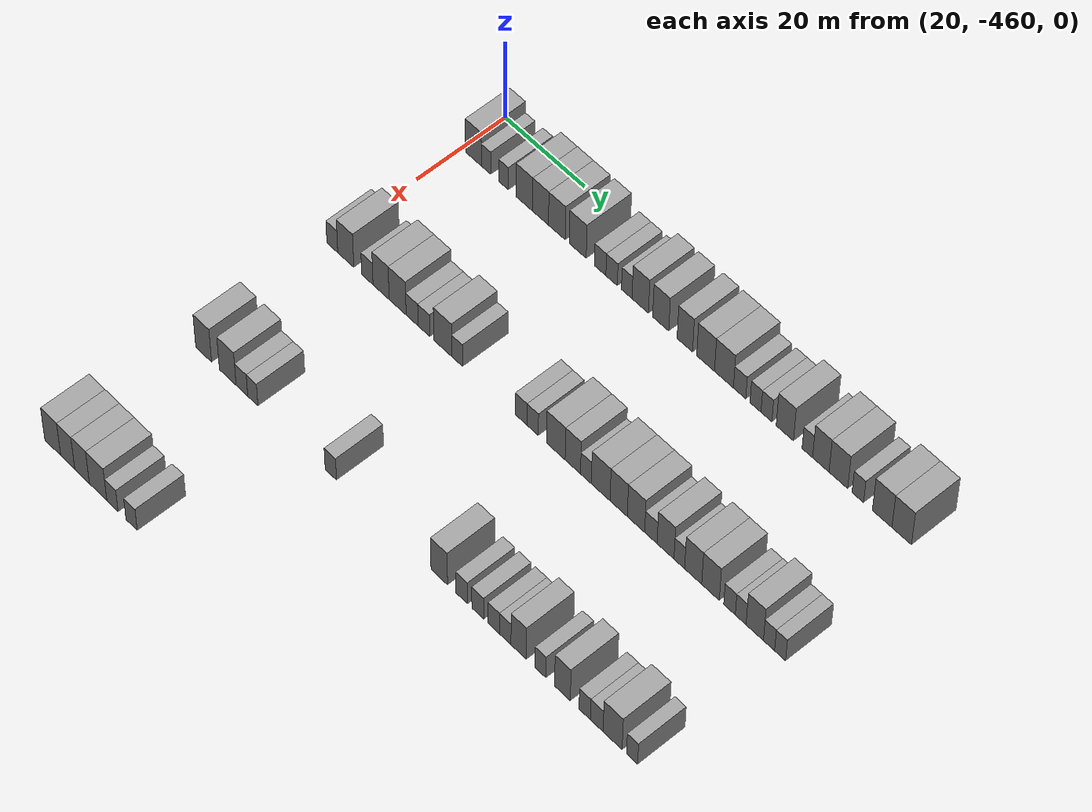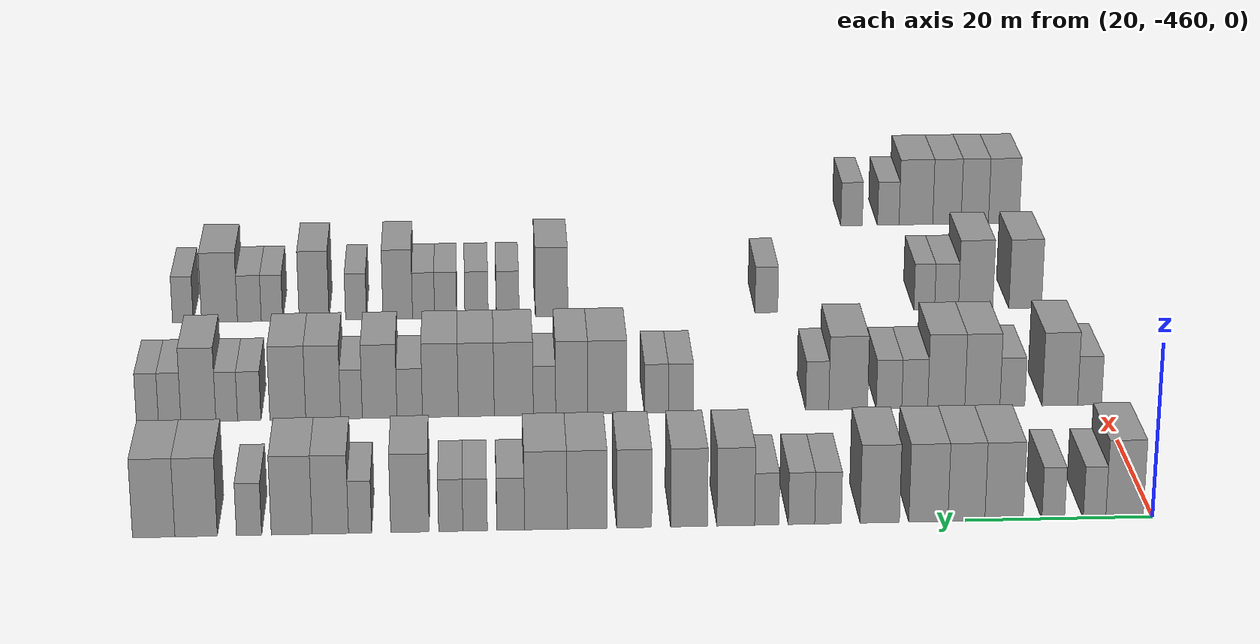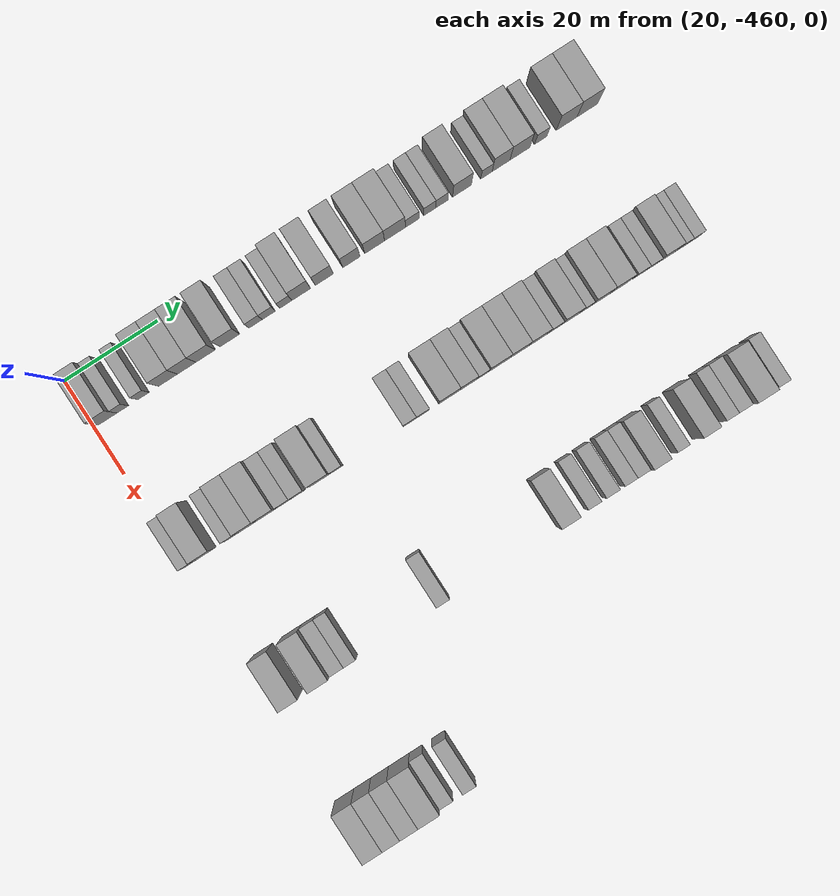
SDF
<sdf version="1.6">
 <world name="default">
  <model name="building_1">
   <static>1</static>
   <pose>25.0000 -456.9990 0 0.000000 0.000000 0.000000</pose>
   <link name="link">
    <pose>0 0 4.50 0 0 0</pose>
    <collision name="collision"><geometry><box><size>10.0000 4.0019 9.0000</size></box></geometry></collision>
    <visual name="visual">
     <cast_shadows>0</cast_shadows>
     <geometry><box><size>10.0000 4.0019 9.0000</size></box></geometry>
     <material>
      <script>
       <uri>model://grey_wall/materials/scripts</uri>
       <uri>model://grey_wall/materials/textures</uri>
       <name>vrc/grey_wall</name>
      </script>
     </material>
    </visual>
   </link>
  </model>
  <model name="building_2">
   <static>1</static>
   <pose>25.0000 -453.7954 0 0.000000 0.000000 0.000000</pose>
   <link name="link">
    <pose>0 0 3.00 0 0 0</pose>
    <collision name="collision"><geometry><box><size>10.0000 2.4054 6.0000</size></box></geometry></collision>
    <visual name="visual">
     <cast_shadows>0</cast_shadows>
     <geometry><box><size>10.0000 2.4054 6.0000</size></box></geometry>
     <material>
      <script>
       <uri>model://grey_wall/materials/scripts</uri>
       <uri>model://grey_wall/materials/textures</uri>
       <name>vrc/grey_wall</name>
      </script>
     </material>
    </visual>
   </link>
  </model>
  <model name="building_3">
   <static>1</static>
   <pose>25.0000 -449.3826 0 0.000000 0.000000 0.000000</pose>
   <link name="link">
    <pose>0 0 3.00 0 0 0</pose>
    <collision name="collision"><geometry><box><size>10.0000 2.4202 6.0000</size></box></geometry></collision>
    <visual name="visual">
     <cast_shadows>0</cast_shadows>
     <geometry><box><size>10.0000 2.4202 6.0000</size></box></geometry>
     <material>
      <script>
       <uri>model://grey_wall/materials/scripts</uri>
       <uri>model://grey_wall/materials/textures</uri>
       <name>vrc/grey_wall</name>
      </script>
     </material>
    </visual>
   </link>
  </model>
  <model name="building_4">
   <static>1</static>
   <pose>25.0000 -444.1288 0 0.000000 0.000000 0.000000</pose>
   <link name="link">
    <pose>0 0 4.50 0 0 0</pose>
    <collision name="collision"><geometry><box><size>10.0000 4.0873 9.0000</size></box></geometry></collision>
    <visual name="visual">
     <cast_shadows>0</cast_shadows>
     <geometry><box><size>10.0000 4.0873 9.0000</size></box></geometry>
     <material>
      <script>
       <uri>model://grey_wall/materials/scripts</uri>
       <uri>model://grey_wall/materials/textures</uri>
       <name>vrc/grey_wall</name>
      </script>
     </material>
    </visual>
   </link>
  </model>
  <model name="building_5">
   <static>1</static>
   <pose>25.0000 -440.1148 0 0.000000 0.000000 0.000000</pose>
   <link name="link">
    <pose>0 0 4.50 0 0 0</pose>
    <collision name="collision"><geometry><box><size>10.0000 3.9407 9.0000</size></box></geometry></collision>
    <visual name="visual">
     <cast_shadows>0</cast_shadows>
     <geometry><box><size>10.0000 3.9407 9.0000</size></box></geometry>
     <material>
      <script>
       <uri>model://grey_wall/materials/scripts</uri>
       <uri>model://grey_wall/materials/textures</uri>
       <name>vrc/grey_wall</name>
      </script>
     </material>
    </visual>
   </link>
  </model>
  <model name="building_6">
   <static>1</static>
   <pose>25.0000 -436.0656 0 0.000000 0.000000 0.000000</pose>
   <link name="link">
    <pose>0 0 4.50 0 0 0</pose>
    <collision name="collision"><geometry><box><size>10.0000 4.1576 9.0000</size></box></geometry></collision>
    <visual name="visual">
     <cast_shadows>0</cast_shadows>
     <geometry><box><size>10.0000 4.1576 9.0000</size></box></geometry>
     <material>
      <script>
       <uri>model://grey_wall/materials/scripts</uri>
       <uri>model://grey_wall/materials/textures</uri>
       <name>vrc/grey_wall</name>
      </script>
     </material>
    </visual>
   </link>
  </model>
  <model name="building_7">
   <static>1</static>
   <pose>25.0000 -430.8940 0 0.000000 0.000000 0.000000</pose>
   <link name="link">
    <pose>0 0 4.50 0 0 0</pose>
    <collision name="collision"><geometry><box><size>10.0000 4.1856 9.0000</size></box></geometry></collision>
    <visual name="visual">
     <cast_shadows>0</cast_shadows>
     <geometry><box><size>10.0000 4.1856 9.0000</size></box></geometry>
     <material>
      <script>
       <uri>model://grey_wall/materials/scripts</uri>
       <uri>model://grey_wall/materials/textures</uri>
       <name>vrc/grey_wall</name>
      </script>
     </material>
    </visual>
   </link>
  </model>
  <model name="building_8">
   <static>1</static>
   <pose>25.0000 -425.3885 0 0.000000 0.000000 0.000000</pose>
   <link name="link">
    <pose>0 0 3.00 0 0 0</pose>
    <collision name="collision"><geometry><box><size>10.0000 2.8254 6.0000</size></box></geometry></collision>
    <visual name="visual">
     <cast_shadows>0</cast_shadows>
     <geometry><box><size>10.0000 2.8254 6.0000</size></box></geometry>
     <material>
      <script>
       <uri>model://grey_wall/materials/scripts</uri>
       <uri>model://grey_wall/materials/textures</uri>
       <name>vrc/grey_wall</name>
      </script>
     </material>
    </visual>
   </link>
  </model>
  <model name="building_9">
   <static>1</static>
   <pose>25.0000 -422.5784 0 0.000000 0.000000 0.000000</pose>
   <link name="link">
    <pose>0 0 3.00 0 0 0</pose>
    <collision name="collision"><geometry><box><size>10.0000 2.7948 6.0000</size></box></geometry></collision>
    <visual name="visual">
     <cast_shadows>0</cast_shadows>
     <geometry><box><size>10.0000 2.7948 6.0000</size></box></geometry>
     <material>
      <script>
       <uri>model://grey_wall/materials/scripts</uri>
       <uri>model://grey_wall/materials/textures</uri>
       <name>vrc/grey_wall</name>
      </script>
     </material>
    </visual>
   </link>
  </model>
  <model name="building_10">
   <static>1</static>
   <pose>25.0000 -418.8921 0 0.000000 0.000000 0.000000</pose>
   <link name="link">
    <pose>0 0 3.00 0 0 0</pose>
    <collision name="collision"><geometry><box><size>10.0000 2.5778 6.0000</size></box></geometry></collision>
    <visual name="visual">
     <cast_shadows>0</cast_shadows>
     <geometry><box><size>10.0000 2.5778 6.0000</size></box></geometry>
     <material>
      <script>
       <uri>model://grey_wall/materials/scripts</uri>
       <uri>model://grey_wall/materials/textures</uri>
       <name>vrc/grey_wall</name>
      </script>
     </material>
    </visual>
   </link>
  </model>
  <model name="building_11">
   <static>1</static>
   <pose>25.0000 -415.6056 0 0.000000 0.000000 0.000000</pose>
   <link name="link">
    <pose>0 0 4.50 0 0 0</pose>
    <collision name="collision"><geometry><box><size>10.0000 3.9953 9.0000</size></box></geometry></collision>
    <visual name="visual">
     <cast_shadows>0</cast_shadows>
     <geometry><box><size>10.0000 3.9953 9.0000</size></box></geometry>
     <material>
      <script>
       <uri>model://grey_wall/materials/scripts</uri>
       <uri>model://grey_wall/materials/textures</uri>
       <name>vrc/grey_wall</name>
      </script>
     </material>
    </visual>
   </link>
  </model>
  <model name="building_12">
   <static>1</static>
   <pose>25.0000 -410.6604 0 0.000000 0.000000 0.000000</pose>
   <link name="link">
    <pose>0 0 4.50 0 0 0</pose>
    <collision name="collision"><geometry><box><size>10.0000 3.8949 9.0000</size></box></geometry></collision>
    <visual name="visual">
     <cast_shadows>0</cast_shadows>
     <geometry><box><size>10.0000 3.8949 9.0000</size></box></geometry>
     <material>
      <script>
       <uri>model://grey_wall/materials/scripts</uri>
       <uri>model://grey_wall/materials/textures</uri>
       <name>vrc/grey_wall</name>
      </script>
     </material>
    </visual>
   </link>
  </model>
  <model name="building_13">
   <static>1</static>
   <pose>25.0000 -404.8639 0 0.000000 0.000000 0.000000</pose>
   <link name="link">
    <pose>0 0 4.50 0 0 0</pose>
    <collision name="collision"><geometry><box><size>10.0000 3.6982 9.0000</size></box></geometry></collision>
    <visual name="visual">
     <cast_shadows>0</cast_shadows>
     <geometry><box><size>10.0000 3.6982 9.0000</size></box></geometry>
     <material>
      <script>
       <uri>model://grey_wall/materials/scripts</uri>
       <uri>model://grey_wall/materials/textures</uri>
       <name>vrc/grey_wall</name>
      </script>
     </material>
    </visual>
   </link>
  </model>
  <model name="building_14">
   <static>1</static>
   <pose>25.0000 -399.9000 0 0.000000 0.000000 0.000000</pose>
   <link name="link">
    <pose>0 0 4.50 0 0 0</pose>
    <collision name="collision"><geometry><box><size>10.0000 4.2295 9.0000</size></box></geometry></collision>
    <visual name="visual">
     <cast_shadows>0</cast_shadows>
     <geometry><box><size>10.0000 4.2295 9.0000</size></box></geometry>
     <material>
      <script>
       <uri>model://grey_wall/materials/scripts</uri>
       <uri>model://grey_wall/materials/textures</uri>
       <name>vrc/grey_wall</name>
      </script>
     </material>
    </visual>
   </link>
  </model>
  <model name="building_15">
   <static>1</static>
   <pose>25.0000 -395.5426 0 0.000000 0.000000 0.000000</pose>
   <link name="link">
    <pose>0 0 4.50 0 0 0</pose>
    <collision name="collision"><geometry><box><size>10.0000 4.4853 9.0000</size></box></geometry></collision>
    <visual name="visual">
     <cast_shadows>0</cast_shadows>
     <geometry><box><size>10.0000 4.4853 9.0000</size></box></geometry>
     <material>
      <script>
       <uri>model://grey_wall/materials/scripts</uri>
       <uri>model://grey_wall/materials/textures</uri>
       <name>vrc/grey_wall</name>
      </script>
     </material>
    </visual>
   </link>
  </model>
  <model name="building_16">
   <static>1</static>
   <pose>25.0000 -391.8419 0 0.000000 0.000000 0.000000</pose>
   <link name="link">
    <pose>0 0 3.00 0 0 0</pose>
    <collision name="collision"><geometry><box><size>10.0000 2.9162 6.0000</size></box></geometry></collision>
    <visual name="visual">
     <cast_shadows>0</cast_shadows>
     <geometry><box><size>10.0000 2.9162 6.0000</size></box></geometry>
     <material>
      <script>
       <uri>model://grey_wall/materials/scripts</uri>
       <uri>model://grey_wall/materials/textures</uri>
       <name>vrc/grey_wall</name>
      </script>
     </material>
    </visual>
   </link>
  </model>
  <model name="building_17">
   <static>1</static>
   <pose>25.0000 -388.0962 0 0.000000 0.000000 0.000000</pose>
   <link name="link">
    <pose>0 0 3.00 0 0 0</pose>
    <collision name="collision"><geometry><box><size>10.0000 2.5751 6.0000</size></box></geometry></collision>
    <visual name="visual">
     <cast_shadows>0</cast_shadows>
     <geometry><box><size>10.0000 2.5751 6.0000</size></box></geometry>
     <material>
      <script>
       <uri>model://grey_wall/materials/scripts</uri>
       <uri>model://grey_wall/materials/textures</uri>
       <name>vrc/grey_wall</name>
      </script>
     </material>
    </visual>
   </link>
  </model>
  <model name="building_18">
   <static>1</static>
   <pose>25.0000 -385.5317 0 0.000000 0.000000 0.000000</pose>
   <link name="link">
    <pose>0 0 3.00 0 0 0</pose>
    <collision name="collision"><geometry><box><size>10.0000 2.5539 6.0000</size></box></geometry></collision>
    <visual name="visual">
     <cast_shadows>0</cast_shadows>
     <geometry><box><size>10.0000 2.5539 6.0000</size></box></geometry>
     <material>
      <script>
       <uri>model://grey_wall/materials/scripts</uri>
       <uri>model://grey_wall/materials/textures</uri>
       <name>vrc/grey_wall</name>
      </script>
     </material>
    </visual>
   </link>
  </model>
  <model name="building_19">
   <static>1</static>
   <pose>25.0000 -381.2378 0 0.000000 0.000000 0.000000</pose>
   <link name="link">
    <pose>0 0 4.50 0 0 0</pose>
    <collision name="collision"><geometry><box><size>10.0000 4.0340 9.0000</size></box></geometry></collision>
    <visual name="visual">
     <cast_shadows>0</cast_shadows>
     <geometry><box><size>10.0000 4.0340 9.0000</size></box></geometry>
     <material>
      <script>
       <uri>model://grey_wall/materials/scripts</uri>
       <uri>model://grey_wall/materials/textures</uri>
       <name>vrc/grey_wall</name>
      </script>
     </material>
    </visual>
   </link>
  </model>
  <model name="building_20">
   <static>1</static>
   <pose>25.0000 -376.0046 0 0.000000 0.000000 0.000000</pose>
   <link name="link">
    <pose>0 0 3.00 0 0 0</pose>
    <collision name="collision"><geometry><box><size>10.0000 2.4324 6.0000</size></box></geometry></collision>
    <visual name="visual">
     <cast_shadows>0</cast_shadows>
     <geometry><box><size>10.0000 2.4324 6.0000</size></box></geometry>
     <material>
      <script>
       <uri>model://grey_wall/materials/scripts</uri>
       <uri>model://grey_wall/materials/textures</uri>
       <name>vrc/grey_wall</name>
      </script>
     </material>
    </visual>
   </link>
  </model>
  <model name="building_21">
   <static>1</static>
   <pose>25.0000 -372.8886 0 0.000000 0.000000 0.000000</pose>
   <link name="link">
    <pose>0 0 4.50 0 0 0</pose>
    <collision name="collision"><geometry><box><size>10.0000 3.7996 9.0000</size></box></geometry></collision>
    <visual name="visual">
     <cast_shadows>0</cast_shadows>
     <geometry><box><size>10.0000 3.7996 9.0000</size></box></geometry>
     <material>
      <script>
       <uri>model://grey_wall/materials/scripts</uri>
       <uri>model://grey_wall/materials/textures</uri>
       <name>vrc/grey_wall</name>
      </script>
     </material>
    </visual>
   </link>
  </model>
  <model name="building_22">
   <static>1</static>
   <pose>25.0000 -368.8407 0 0.000000 0.000000 0.000000</pose>
   <link name="link">
    <pose>0 0 4.50 0 0 0</pose>
    <collision name="collision"><geometry><box><size>10.0000 4.2962 9.0000</size></box></geometry></collision>
    <visual name="visual">
     <cast_shadows>0</cast_shadows>
     <geometry><box><size>10.0000 4.2962 9.0000</size></box></geometry>
     <material>
      <script>
       <uri>model://grey_wall/materials/scripts</uri>
       <uri>model://grey_wall/materials/textures</uri>
       <name>vrc/grey_wall</name>
      </script>
     </material>
    </visual>
   </link>
  </model>
  <model name="building_23">
   <static>1</static>
   <pose>25.0000 -364.3743 0 0.000000 0.000000 0.000000</pose>
   <link name="link">
    <pose>0 0 3.00 0 0 0</pose>
    <collision name="collision"><geometry><box><size>10.0000 2.6366 6.0000</size></box></geometry></collision>
    <visual name="visual">
     <cast_shadows>0</cast_shadows>
     <geometry><box><size>10.0000 2.6366 6.0000</size></box></geometry>
     <material>
      <script>
       <uri>model://grey_wall/materials/scripts</uri>
       <uri>model://grey_wall/materials/textures</uri>
       <name>vrc/grey_wall</name>
      </script>
     </material>
    </visual>
   </link>
  </model>
  <model name="building_24">
   <static>1</static>
   <pose>25.0000 -358.8417 0 0.000000 0.000000 0.000000</pose>
   <link name="link">
    <pose>0 0 4.50 0 0 0</pose>
    <collision name="collision"><geometry><box><size>10.0000 4.4285 9.0000</size></box></geometry></collision>
    <visual name="visual">
     <cast_shadows>0</cast_shadows>
     <geometry><box><size>10.0000 4.4285 9.0000</size></box></geometry>
     <material>
      <script>
       <uri>model://grey_wall/materials/scripts</uri>
       <uri>model://grey_wall/materials/textures</uri>
       <name>vrc/grey_wall</name>
      </script>
     </material>
    </visual>
   </link>
  </model>
  <model name="building_25">
   <static>1</static>
   <pose>25.0000 -354.4156 0 0.000000 0.000000 0.000000</pose>
   <link name="link">
    <pose>0 0 4.50 0 0 0</pose>
    <collision name="collision"><geometry><box><size>10.0000 4.4237 9.0000</size></box></geometry></collision>
    <visual name="visual">
     <cast_shadows>0</cast_shadows>
     <geometry><box><size>10.0000 4.4237 9.0000</size></box></geometry>
     <material>
      <script>
       <uri>model://grey_wall/materials/scripts</uri>
       <uri>model://grey_wall/materials/textures</uri>
       <name>vrc/grey_wall</name>
      </script>
     </material>
    </visual>
   </link>
  </model>
  <model name="building_235">
   <static>1</static>
   <pose>55.0000 -458.6134 0 0.000000 0.000000 0.000000</pose>
   <link name="link">
    <pose>0 0 3.00 0 0 0</pose>
    <collision name="collision"><geometry><box><size>10.0000 2.7732 6.0000</size></box></geometry></collision>
    <visual name="visual">
     <cast_shadows>0</cast_shadows>
     <geometry><box><size>10.0000 2.7732 6.0000</size></box></geometry>
     <material>
      <script>
       <uri>model://grey_wall/materials/scripts</uri>
       <uri>model://grey_wall/materials/textures</uri>
       <name>vrc/grey_wall</name>
      </script>
     </material>
    </visual>
   </link>
  </model>
  <model name="building_236">
   <static>1</static>
   <pose>55.0000 -455.1838 0 0.000000 0.000000 0.000000</pose>
   <link name="link">
    <pose>0 0 4.50 0 0 0</pose>
    <collision name="collision"><geometry><box><size>10.0000 4.0860 9.0000</size></box></geometry></collision>
    <visual name="visual">
     <cast_shadows>0</cast_shadows>
     <geometry><box><size>10.0000 4.0860 9.0000</size></box></geometry>
     <material>
      <script>
       <uri>model://grey_wall/materials/scripts</uri>
       <uri>model://grey_wall/materials/textures</uri>
       <name>vrc/grey_wall</name>
      </script>
     </material>
    </visual>
   </link>
  </model>
  <model name="building_237">
   <static>1</static>
   <pose>55.0000 -449.7060 0 0.000000 0.000000 0.000000</pose>
   <link name="link">
    <pose>0 0 3.00 0 0 0</pose>
    <collision name="collision"><geometry><box><size>10.0000 2.8697 6.0000</size></box></geometry></collision>
    <visual name="visual">
     <cast_shadows>0</cast_shadows>
     <geometry><box><size>10.0000 2.8697 6.0000</size></box></geometry>
     <material>
      <script>
       <uri>model://grey_wall/materials/scripts</uri>
       <uri>model://grey_wall/materials/textures</uri>
       <name>vrc/grey_wall</name>
      </script>
     </material>
    </visual>
   </link>
  </model>
  <model name="building_238">
   <static>1</static>
   <pose>55.0000 -446.2470 0 0.000000 0.000000 0.000000</pose>
   <link name="link">
    <pose>0 0 4.50 0 0 0</pose>
    <collision name="collision"><geometry><box><size>10.0000 4.0483 9.0000</size></box></geometry></collision>
    <visual name="visual">
     <cast_shadows>0</cast_shadows>
     <geometry><box><size>10.0000 4.0483 9.0000</size></box></geometry>
     <material>
      <script>
       <uri>model://grey_wall/materials/scripts</uri>
       <uri>model://grey_wall/materials/textures</uri>
       <name>vrc/grey_wall</name>
      </script>
     </material>
    </visual>
   </link>
  </model>
  <model name="building_239">
   <static>1</static>
   <pose>55.0000 -442.0933 0 0.000000 0.000000 0.000000</pose>
   <link name="link">
    <pose>0 0 4.50 0 0 0</pose>
    <collision name="collision"><geometry><box><size>10.0000 4.2589 9.0000</size></box></geometry></collision>
    <visual name="visual">
     <cast_shadows>0</cast_shadows>
     <geometry><box><size>10.0000 4.2589 9.0000</size></box></geometry>
     <material>
      <script>
       <uri>model://grey_wall/materials/scripts</uri>
       <uri>model://grey_wall/materials/textures</uri>
       <name>vrc/grey_wall</name>
      </script>
     </material>
    </visual>
   </link>
  </model>
  <model name="building_240">
   <static>1</static>
   <pose>55.0000 -438.4665 0 0.000000 0.000000 0.000000</pose>
   <link name="link">
    <pose>0 0 3.00 0 0 0</pose>
    <collision name="collision"><geometry><box><size>10.0000 2.9948 6.0000</size></box></geometry></collision>
    <visual name="visual">
     <cast_shadows>0</cast_shadows>
     <geometry><box><size>10.0000 2.9948 6.0000</size></box></geometry>
     <material>
      <script>
       <uri>model://grey_wall/materials/scripts</uri>
       <uri>model://grey_wall/materials/textures</uri>
       <name>vrc/grey_wall</name>
      </script>
     </material>
    </visual>
   </link>
  </model>
  <model name="building_241">
   <static>1</static>
   <pose>55.0000 -435.5028 0 0.000000 0.000000 0.000000</pose>
   <link name="link">
    <pose>0 0 3.00 0 0 0</pose>
    <collision name="collision"><geometry><box><size>10.0000 2.9327 6.0000</size></box></geometry></collision>
    <visual name="visual">
     <cast_shadows>0</cast_shadows>
     <geometry><box><size>10.0000 2.9327 6.0000</size></box></geometry>
     <material>
      <script>
       <uri>model://grey_wall/materials/scripts</uri>
       <uri>model://grey_wall/materials/textures</uri>
       <name>vrc/grey_wall</name>
      </script>
     </material>
    </visual>
   </link>
  </model>
  <model name="building_242">
   <static>1</static>
   <pose>55.0000 -430.8138 0 0.000000 0.000000 0.000000</pose>
   <link name="link">
    <pose>0 0 4.50 0 0 0</pose>
    <collision name="collision"><geometry><box><size>10.0000 4.4453 9.0000</size></box></geometry></collision>
    <visual name="visual">
     <cast_shadows>0</cast_shadows>
     <geometry><box><size>10.0000 4.4453 9.0000</size></box></geometry>
     <material>
      <script>
       <uri>model://grey_wall/materials/scripts</uri>
       <uri>model://grey_wall/materials/textures</uri>
       <name>vrc/grey_wall</name>
      </script>
     </material>
    </visual>
   </link>
  </model>
  <model name="building_243">
   <static>1</static>
   <pose>55.0000 -427.2659 0 0.000000 0.000000 0.000000</pose>
   <link name="link">
    <pose>0 0 3.00 0 0 0</pose>
    <collision name="collision"><geometry><box><size>10.0000 2.6504 6.0000</size></box></geometry></collision>
    <visual name="visual">
     <cast_shadows>0</cast_shadows>
     <geometry><box><size>10.0000 2.6504 6.0000</size></box></geometry>
     <material>
      <script>
       <uri>model://grey_wall/materials/scripts</uri>
       <uri>model://grey_wall/materials/textures</uri>
       <name>vrc/grey_wall</name>
      </script>
     </material>
    </visual>
   </link>
  </model>
  <model name="building_244">
   <static>1</static>
   <pose>55.0000 -411.6519 0 0.000000 0.000000 0.000000</pose>
   <link name="link">
    <pose>0 0 3.00 0 0 0</pose>
    <collision name="collision"><geometry><box><size>10.0000 2.8592 6.0000</size></box></geometry></collision>
    <visual name="visual">
     <cast_shadows>0</cast_shadows>
     <geometry><box><size>10.0000 2.8592 6.0000</size></box></geometry>
     <material>
      <script>
       <uri>model://grey_wall/materials/scripts</uri>
       <uri>model://grey_wall/materials/textures</uri>
       <name>vrc/grey_wall</name>
      </script>
     </material>
    </visual>
   </link>
  </model>
  <model name="building_245">
   <static>1</static>
   <pose>55.0000 -408.8595 0 0.000000 0.000000 0.000000</pose>
   <link name="link">
    <pose>0 0 3.00 0 0 0</pose>
    <collision name="collision"><geometry><box><size>10.0000 2.7256 6.0000</size></box></geometry></collision>
    <visual name="visual">
     <cast_shadows>0</cast_shadows>
     <geometry><box><size>10.0000 2.7256 6.0000</size></box></geometry>
     <material>
      <script>
       <uri>model://grey_wall/materials/scripts</uri>
       <uri>model://grey_wall/materials/textures</uri>
       <name>vrc/grey_wall</name>
      </script>
     </material>
    </visual>
   </link>
  </model>
  <model name="building_246">
   <static>1</static>
   <pose>55.0000 -403.2719 0 0.000000 0.000000 0.000000</pose>
   <link name="link">
    <pose>0 0 4.50 0 0 0</pose>
    <collision name="collision"><geometry><box><size>10.0000 4.4496 9.0000</size></box></geometry></collision>
    <visual name="visual">
     <cast_shadows>0</cast_shadows>
     <geometry><box><size>10.0000 4.4496 9.0000</size></box></geometry>
     <material>
      <script>
       <uri>model://grey_wall/materials/scripts</uri>
       <uri>model://grey_wall/materials/textures</uri>
       <name>vrc/grey_wall</name>
      </script>
     </material>
    </visual>
   </link>
  </model>
  <model name="building_247">
   <static>1</static>
   <pose>55.0000 -399.2152 0 0.000000 0.000000 0.000000</pose>
   <link name="link">
    <pose>0 0 4.50 0 0 0</pose>
    <collision name="collision"><geometry><box><size>10.0000 3.6638 9.0000</size></box></geometry></collision>
    <visual name="visual">
     <cast_shadows>0</cast_shadows>
     <geometry><box><size>10.0000 3.6638 9.0000</size></box></geometry>
     <material>
      <script>
       <uri>model://grey_wall/materials/scripts</uri>
       <uri>model://grey_wall/materials/textures</uri>
       <name>vrc/grey_wall</name>
      </script>
     </material>
    </visual>
   </link>
  </model>
  <model name="building_248">
   <static>1</static>
   <pose>55.0000 -396.1064 0 0.000000 0.000000 0.000000</pose>
   <link name="link">
    <pose>0 0 3.00 0 0 0</pose>
    <collision name="collision"><geometry><box><size>10.0000 2.5538 6.0000</size></box></geometry></collision>
    <visual name="visual">
     <cast_shadows>0</cast_shadows>
     <geometry><box><size>10.0000 2.5538 6.0000</size></box></geometry>
     <material>
      <script>
       <uri>model://grey_wall/materials/scripts</uri>
       <uri>model://grey_wall/materials/textures</uri>
       <name>vrc/grey_wall</name>
      </script>
     </material>
    </visual>
   </link>
  </model>
  <model name="building_249">
   <static>1</static>
   <pose>55.0000 -392.6102 0 0.000000 0.000000 0.000000</pose>
   <link name="link">
    <pose>0 0 4.50 0 0 0</pose>
    <collision name="collision"><geometry><box><size>10.0000 4.4385 9.0000</size></box></geometry></collision>
    <visual name="visual">
     <cast_shadows>0</cast_shadows>
     <geometry><box><size>10.0000 4.4385 9.0000</size></box></geometry>
     <material>
      <script>
       <uri>model://grey_wall/materials/scripts</uri>
       <uri>model://grey_wall/materials/textures</uri>
       <name>vrc/grey_wall</name>
      </script>
     </material>
    </visual>
   </link>
  </model>
  <model name="building_250">
   <static>1</static>
   <pose>55.0000 -388.3559 0 0.000000 0.000000 0.000000</pose>
   <link name="link">
    <pose>0 0 4.50 0 0 0</pose>
    <collision name="collision"><geometry><box><size>10.0000 4.0701 9.0000</size></box></geometry></collision>
    <visual name="visual">
     <cast_shadows>0</cast_shadows>
     <geometry><box><size>10.0000 4.0701 9.0000</size></box></geometry>
     <material>
      <script>
       <uri>model://grey_wall/materials/scripts</uri>
       <uri>model://grey_wall/materials/textures</uri>
       <name>vrc/grey_wall</name>
      </script>
     </material>
    </visual>
   </link>
  </model>
  <model name="building_251">
   <static>1</static>
   <pose>55.0000 -384.2782 0 0.000000 0.000000 0.000000</pose>
   <link name="link">
    <pose>0 0 4.50 0 0 0</pose>
    <collision name="collision"><geometry><box><size>10.0000 4.0853 9.0000</size></box></geometry></collision>
    <visual name="visual">
     <cast_shadows>0</cast_shadows>
     <geometry><box><size>10.0000 4.0853 9.0000</size></box></geometry>
     <material>
      <script>
       <uri>model://grey_wall/materials/scripts</uri>
       <uri>model://grey_wall/materials/textures</uri>
       <name>vrc/grey_wall</name>
      </script>
     </material>
    </visual>
   </link>
  </model>
  <model name="building_252">
   <static>1</static>
   <pose>55.0000 -380.7908 0 0.000000 0.000000 0.000000</pose>
   <link name="link">
    <pose>0 0 3.00 0 0 0</pose>
    <collision name="collision"><geometry><box><size>10.0000 2.8896 6.0000</size></box></geometry></collision>
    <visual name="visual">
     <cast_shadows>0</cast_shadows>
     <geometry><box><size>10.0000 2.8896 6.0000</size></box></geometry>
     <material>
      <script>
       <uri>model://grey_wall/materials/scripts</uri>
       <uri>model://grey_wall/materials/textures</uri>
       <name>vrc/grey_wall</name>
      </script>
     </material>
    </visual>
   </link>
  </model>
  <model name="building_253">
   <static>1</static>
   <pose>55.0000 -377.3785 0 0.000000 0.000000 0.000000</pose>
   <link name="link">
    <pose>0 0 4.50 0 0 0</pose>
    <collision name="collision"><geometry><box><size>10.0000 3.9350 9.0000</size></box></geometry></collision>
    <visual name="visual">
     <cast_shadows>0</cast_shadows>
     <geometry><box><size>10.0000 3.9350 9.0000</size></box></geometry>
     <material>
      <script>
       <uri>model://grey_wall/materials/scripts</uri>
       <uri>model://grey_wall/materials/textures</uri>
       <name>vrc/grey_wall</name>
      </script>
     </material>
    </visual>
   </link>
  </model>
  <model name="building_254">
   <static>1</static>
   <pose>55.0000 -374.1814 0 0.000000 0.000000 0.000000</pose>
   <link name="link">
    <pose>0 0 3.00 0 0 0</pose>
    <collision name="collision"><geometry><box><size>10.0000 2.4592 6.0000</size></box></geometry></collision>
    <visual name="visual">
     <cast_shadows>0</cast_shadows>
     <geometry><box><size>10.0000 2.4592 6.0000</size></box></geometry>
     <material>
      <script>
       <uri>model://grey_wall/materials/scripts</uri>
       <uri>model://grey_wall/materials/textures</uri>
       <name>vrc/grey_wall</name>
      </script>
     </material>
    </visual>
   </link>
  </model>
  <model name="building_255">
   <static>1</static>
   <pose>55.0000 -370.9761 0 0.000000 0.000000 0.000000</pose>
   <link name="link">
    <pose>0 0 4.50 0 0 0</pose>
    <collision name="collision"><geometry><box><size>10.0000 3.9515 9.0000</size></box></geometry></collision>
    <visual name="visual">
     <cast_shadows>0</cast_shadows>
     <geometry><box><size>10.0000 3.9515 9.0000</size></box></geometry>
     <material>
      <script>
       <uri>model://grey_wall/materials/scripts</uri>
       <uri>model://grey_wall/materials/textures</uri>
       <name>vrc/grey_wall</name>
      </script>
     </material>
    </visual>
   </link>
  </model>
  <model name="building_256">
   <static>1</static>
   <pose>55.0000 -366.9697 0 0.000000 0.000000 0.000000</pose>
   <link name="link">
    <pose>0 0 4.50 0 0 0</pose>
    <collision name="collision"><geometry><box><size>10.0000 4.0612 9.0000</size></box></geometry></collision>
    <visual name="visual">
     <cast_shadows>0</cast_shadows>
     <geometry><box><size>10.0000 4.0612 9.0000</size></box></geometry>
     <material>
      <script>
       <uri>model://grey_wall/materials/scripts</uri>
       <uri>model://grey_wall/materials/textures</uri>
       <name>vrc/grey_wall</name>
      </script>
     </material>
    </visual>
   </link>
  </model>
  <model name="building_257">
   <static>1</static>
   <pose>55.0000 -362.6147 0 0.000000 0.000000 0.000000</pose>
   <link name="link">
    <pose>0 0 3.00 0 0 0</pose>
    <collision name="collision"><geometry><box><size>10.0000 2.6487 6.0000</size></box></geometry></collision>
    <visual name="visual">
     <cast_shadows>0</cast_shadows>
     <geometry><box><size>10.0000 2.6487 6.0000</size></box></geometry>
     <material>
      <script>
       <uri>model://grey_wall/materials/scripts</uri>
       <uri>model://grey_wall/materials/textures</uri>
       <name>vrc/grey_wall</name>
      </script>
     </material>
    </visual>
   </link>
  </model>
  <model name="building_258">
   <static>1</static>
   <pose>55.0000 -360.0639 0 0.000000 0.000000 0.000000</pose>
   <link name="link">
    <pose>0 0 3.00 0 0 0</pose>
    <collision name="collision"><geometry><box><size>10.0000 2.4530 6.0000</size></box></geometry></collision>
    <visual name="visual">
     <cast_shadows>0</cast_shadows>
     <geometry><box><size>10.0000 2.4530 6.0000</size></box></geometry>
     <material>
      <script>
       <uri>model://grey_wall/materials/scripts</uri>
       <uri>model://grey_wall/materials/textures</uri>
       <name>vrc/grey_wall</name>
      </script>
     </material>
    </visual>
   </link>
  </model>
  <model name="building_259">
   <static>1</static>
   <pose>55.0000 -356.8669 0 0.000000 0.000000 0.000000</pose>
   <link name="link">
    <pose>0 0 4.50 0 0 0</pose>
    <collision name="collision"><geometry><box><size>10.0000 3.9409 9.0000</size></box></geometry></collision>
    <visual name="visual">
     <cast_shadows>0</cast_shadows>
     <geometry><box><size>10.0000 3.9409 9.0000</size></box></geometry>
     <material>
      <script>
       <uri>model://grey_wall/materials/scripts</uri>
       <uri>model://grey_wall/materials/textures</uri>
       <name>vrc/grey_wall</name>
      </script>
     </material>
    </visual>
   </link>
  </model>
  <model name="building_260">
   <static>1</static>
   <pose>55.0000 -353.6289 0 0.000000 0.000000 0.000000</pose>
   <link name="link">
    <pose>0 0 3.00 0 0 0</pose>
    <collision name="collision"><geometry><box><size>10.0000 2.5351 6.0000</size></box></geometry></collision>
    <visual name="visual">
     <cast_shadows>0</cast_shadows>
     <geometry><box><size>10.0000 2.5351 6.0000</size></box></geometry>
     <material>
      <script>
       <uri>model://grey_wall/materials/scripts</uri>
       <uri>model://grey_wall/materials/textures</uri>
       <name>vrc/grey_wall</name>
      </script>
     </material>
    </visual>
   </link>
  </model>
  <model name="building_261">
   <static>1</static>
   <pose>55.0000 -351.1201 0 0.000000 0.000000 0.000000</pose>
   <link name="link">
    <pose>0 0 3.00 0 0 0</pose>
    <collision name="collision"><geometry><box><size>10.0000 2.4823 6.0000</size></box></geometry></collision>
    <visual name="visual">
     <cast_shadows>0</cast_shadows>
     <geometry><box><size>10.0000 2.4823 6.0000</size></box></geometry>
     <material>
      <script>
       <uri>model://grey_wall/materials/scripts</uri>
       <uri>model://grey_wall/materials/textures</uri>
       <name>vrc/grey_wall</name>
      </script>
     </material>
    </visual>
   </link>
  </model>
  <model name="building_454">
   <static>1</static>
   <pose>85.0000 -455.9805 0 0.000000 0.000000 0.000000</pose>
   <link name="link">
    <pose>0 0 4.50 0 0 0</pose>
    <collision name="collision"><geometry><box><size>10.0000 4.0389 9.0000</size></box></geometry></collision>
    <visual name="visual">
     <cast_shadows>0</cast_shadows>
     <geometry><box><size>10.0000 4.0389 9.0000</size></box></geometry>
     <material>
      <script>
       <uri>model://grey_wall/materials/scripts</uri>
       <uri>model://grey_wall/materials/textures</uri>
       <name>vrc/grey_wall</name>
      </script>
     </material>
    </visual>
   </link>
  </model>
  <model name="building_455">
   <static>1</static>
   <pose>85.0000 -449.8436 0 0.000000 0.000000 0.000000</pose>
   <link name="link">
    <pose>0 0 4.50 0 0 0</pose>
    <collision name="collision"><geometry><box><size>10.0000 4.2349 9.0000</size></box></geometry></collision>
    <visual name="visual">
     <cast_shadows>0</cast_shadows>
     <geometry><box><size>10.0000 4.2349 9.0000</size></box></geometry>
     <material>
      <script>
       <uri>model://grey_wall/materials/scripts</uri>
       <uri>model://grey_wall/materials/textures</uri>
       <name>vrc/grey_wall</name>
      </script>
     </material>
    </visual>
   </link>
  </model>
  <model name="building_456">
   <static>1</static>
   <pose>85.0000 -446.2481 0 0.000000 0.000000 0.000000</pose>
   <link name="link">
    <pose>0 0 3.00 0 0 0</pose>
    <collision name="collision"><geometry><box><size>10.0000 2.9561 6.0000</size></box></geometry></collision>
    <visual name="visual">
     <cast_shadows>0</cast_shadows>
     <geometry><box><size>10.0000 2.9561 6.0000</size></box></geometry>
     <material>
      <script>
       <uri>model://grey_wall/materials/scripts</uri>
       <uri>model://grey_wall/materials/textures</uri>
       <name>vrc/grey_wall</name>
      </script>
     </material>
    </visual>
   </link>
  </model>
  <model name="building_457">
   <static>1</static>
   <pose>85.0000 -443.4904 0 0.000000 0.000000 0.000000</pose>
   <link name="link">
    <pose>0 0 3.00 0 0 0</pose>
    <collision name="collision"><geometry><box><size>10.0000 2.5592 6.0000</size></box></geometry></collision>
    <visual name="visual">
     <cast_shadows>0</cast_shadows>
     <geometry><box><size>10.0000 2.5592 6.0000</size></box></geometry>
     <material>
      <script>
       <uri>model://grey_wall/materials/scripts</uri>
       <uri>model://grey_wall/materials/textures</uri>
       <name>vrc/grey_wall</name>
      </script>
     </material>
    </visual>
   </link>
  </model>
  <model name="building_458">
   <static>1</static>
   <pose>85.0000 -424.0221 0 0.000000 0.000000 0.000000</pose>
   <link name="link">
    <pose>0 0 3.00 0 0 0</pose>
    <collision name="collision"><geometry><box><size>10.0000 2.7925 6.0000</size></box></geometry></collision>
    <visual name="visual">
     <cast_shadows>0</cast_shadows>
     <geometry><box><size>10.0000 2.7925 6.0000</size></box></geometry>
     <material>
      <script>
       <uri>model://grey_wall/materials/scripts</uri>
       <uri>model://grey_wall/materials/textures</uri>
       <name>vrc/grey_wall</name>
      </script>
     </material>
    </visual>
   </link>
  </model>
  <model name="building_459">
   <static>1</static>
   <pose>85.0000 -397.6826 0 0.000000 0.000000 0.000000</pose>
   <link name="link">
    <pose>0 0 4.50 0 0 0</pose>
    <collision name="collision"><geometry><box><size>10.0000 3.9622 9.0000</size></box></geometry></collision>
    <visual name="visual">
     <cast_shadows>0</cast_shadows>
     <geometry><box><size>10.0000 3.9622 9.0000</size></box></geometry>
     <material>
      <script>
       <uri>model://grey_wall/materials/scripts</uri>
       <uri>model://grey_wall/materials/textures</uri>
       <name>vrc/grey_wall</name>
      </script>
     </material>
    </visual>
   </link>
  </model>
  <model name="building_460">
   <static>1</static>
   <pose>85.0000 -392.3170 0 0.000000 0.000000 0.000000</pose>
   <link name="link">
    <pose>0 0 3.00 0 0 0</pose>
    <collision name="collision"><geometry><box><size>10.0000 2.7690 6.0000</size></box></geometry></collision>
    <visual name="visual">
     <cast_shadows>0</cast_shadows>
     <geometry><box><size>10.0000 2.7690 6.0000</size></box></geometry>
     <material>
      <script>
       <uri>model://grey_wall/materials/scripts</uri>
       <uri>model://grey_wall/materials/textures</uri>
       <name>vrc/grey_wall</name>
      </script>
     </material>
    </visual>
   </link>
  </model>
  <model name="building_461">
   <static>1</static>
   <pose>85.0000 -388.5080 0 0.000000 0.000000 0.000000</pose>
   <link name="link">
    <pose>0 0 3.00 0 0 0</pose>
    <collision name="collision"><geometry><box><size>10.0000 2.8488 6.0000</size></box></geometry></collision>
    <visual name="visual">
     <cast_shadows>0</cast_shadows>
     <geometry><box><size>10.0000 2.8488 6.0000</size></box></geometry>
     <material>
      <script>
       <uri>model://grey_wall/materials/scripts</uri>
       <uri>model://grey_wall/materials/textures</uri>
       <name>vrc/grey_wall</name>
      </script>
     </material>
    </visual>
   </link>
  </model>
  <model name="building_462">
   <static>1</static>
   <pose>85.0000 -384.7372 0 0.000000 0.000000 0.000000</pose>
   <link name="link">
    <pose>0 0 3.00 0 0 0</pose>
    <collision name="collision"><geometry><box><size>10.0000 2.6928 6.0000</size></box></geometry></collision>
    <visual name="visual">
     <cast_shadows>0</cast_shadows>
     <geometry><box><size>10.0000 2.6928 6.0000</size></box></geometry>
     <material>
      <script>
       <uri>model://grey_wall/materials/scripts</uri>
       <uri>model://grey_wall/materials/textures</uri>
       <name>vrc/grey_wall</name>
      </script>
     </material>
    </visual>
   </link>
  </model>
  <model name="building_463">
   <static>1</static>
   <pose>85.0000 -382.0454 0 0.000000 0.000000 0.000000</pose>
   <link name="link">
    <pose>0 0 3.00 0 0 0</pose>
    <collision name="collision"><geometry><box><size>10.0000 2.6907 6.0000</size></box></geometry></collision>
    <visual name="visual">
     <cast_shadows>0</cast_shadows>
     <geometry><box><size>10.0000 2.6907 6.0000</size></box></geometry>
     <material>
      <script>
       <uri>model://grey_wall/materials/scripts</uri>
       <uri>model://grey_wall/materials/textures</uri>
       <name>vrc/grey_wall</name>
      </script>
     </material>
    </visual>
   </link>
  </model>
  <model name="building_464">
   <static>1</static>
   <pose>85.0000 -378.8991 0 0.000000 0.000000 0.000000</pose>
   <link name="link">
    <pose>0 0 4.50 0 0 0</pose>
    <collision name="collision"><geometry><box><size>10.0000 3.6019 9.0000</size></box></geometry></collision>
    <visual name="visual">
     <cast_shadows>0</cast_shadows>
     <geometry><box><size>10.0000 3.6019 9.0000</size></box></geometry>
     <material>
      <script>
       <uri>model://grey_wall/materials/scripts</uri>
       <uri>model://grey_wall/materials/textures</uri>
       <name>vrc/grey_wall</name>
      </script>
     </material>
    </visual>
   </link>
  </model>
  <model name="building_465">
   <static>1</static>
   <pose>85.0000 -373.8190 0 0.000000 0.000000 0.000000</pose>
   <link name="link">
    <pose>0 0 3.00 0 0 0</pose>
    <collision name="collision"><geometry><box><size>10.0000 2.5583 6.0000</size></box></geometry></collision>
    <visual name="visual">
     <cast_shadows>0</cast_shadows>
     <geometry><box><size>10.0000 2.5583 6.0000</size></box></geometry>
     <material>
      <script>
       <uri>model://grey_wall/materials/scripts</uri>
       <uri>model://grey_wall/materials/textures</uri>
       <name>vrc/grey_wall</name>
      </script>
     </material>
    </visual>
   </link>
  </model>
  <model name="building_466">
   <static>1</static>
   <pose>85.0000 -368.7201 0 0.000000 0.000000 0.000000</pose>
   <link name="link">
    <pose>0 0 4.50 0 0 0</pose>
    <collision name="collision"><geometry><box><size>10.0000 3.6394 9.0000</size></box></geometry></collision>
    <visual name="visual">
     <cast_shadows>0</cast_shadows>
     <geometry><box><size>10.0000 3.6394 9.0000</size></box></geometry>
     <material>
      <script>
       <uri>model://grey_wall/materials/scripts</uri>
       <uri>model://grey_wall/materials/textures</uri>
       <name>vrc/grey_wall</name>
      </script>
     </material>
    </visual>
   </link>
  </model>
  <model name="building_467">
   <static>1</static>
   <pose>85.0000 -363.5960 0 0.000000 0.000000 0.000000</pose>
   <link name="link">
    <pose>0 0 3.00 0 0 0</pose>
    <collision name="collision"><geometry><box><size>10.0000 2.6089 6.0000</size></box></geometry></collision>
    <visual name="visual">
     <cast_shadows>0</cast_shadows>
     <geometry><box><size>10.0000 2.6089 6.0000</size></box></geometry>
     <material>
      <script>
       <uri>model://grey_wall/materials/scripts</uri>
       <uri>model://grey_wall/materials/textures</uri>
       <name>vrc/grey_wall</name>
      </script>
     </material>
    </visual>
   </link>
  </model>
  <model name="building_468">
   <static>1</static>
   <pose>85.0000 -360.8447 0 0.000000 0.000000 0.000000</pose>
   <link name="link">
    <pose>0 0 3.00 0 0 0</pose>
    <collision name="collision"><geometry><box><size>10.0000 2.8936 6.0000</size></box></geometry></collision>
    <visual name="visual">
     <cast_shadows>0</cast_shadows>
     <geometry><box><size>10.0000 2.8936 6.0000</size></box></geometry>
     <material>
      <script>
       <uri>model://grey_wall/materials/scripts</uri>
       <uri>model://grey_wall/materials/textures</uri>
       <name>vrc/grey_wall</name>
      </script>
     </material>
    </visual>
   </link>
  </model>
  <model name="building_469">
   <static>1</static>
   <pose>85.0000 -357.2218 0 0.000000 0.000000 0.000000</pose>
   <link name="link">
    <pose>0 0 4.50 0 0 0</pose>
    <collision name="collision"><geometry><box><size>10.0000 4.3522 9.0000</size></box></geometry></collision>
    <visual name="visual">
     <cast_shadows>0</cast_shadows>
     <geometry><box><size>10.0000 4.3522 9.0000</size></box></geometry>
     <material>
      <script>
       <uri>model://grey_wall/materials/scripts</uri>
       <uri>model://grey_wall/materials/textures</uri>
       <name>vrc/grey_wall</name>
      </script>
     </material>
    </visual>
   </link>
  </model>
  <model name="building_470">
   <static>1</static>
   <pose>85.0000 -352.7876 0 0.000000 0.000000 0.000000</pose>
   <link name="link">
    <pose>0 0 3.00 0 0 0</pose>
    <collision name="collision"><geometry><box><size>10.0000 2.5160 6.0000</size></box></geometry></collision>
    <visual name="visual">
     <cast_shadows>0</cast_shadows>
     <geometry><box><size>10.0000 2.5160 6.0000</size></box></geometry>
     <material>
      <script>
       <uri>model://grey_wall/materials/scripts</uri>
       <uri>model://grey_wall/materials/textures</uri>
       <name>vrc/grey_wall</name>
      </script>
     </material>
    </visual>
   </link>
  </model>
  <model name="building_673">
   <static>1</static>
   <pose>115.0000 -457.9562 0 0.000000 0.000000 0.000000</pose>
   <link name="link">
    <pose>0 0 4.50 0 0 0</pose>
    <collision name="collision"><geometry><box><size>10.0000 4.0876 9.0000</size></box></geometry></collision>
    <visual name="visual">
     <cast_shadows>0</cast_shadows>
     <geometry><box><size>10.0000 4.0876 9.0000</size></box></geometry>
     <material>
      <script>
       <uri>model://grey_wall/materials/scripts</uri>
       <uri>model://grey_wall/materials/textures</uri>
       <name>vrc/grey_wall</name>
      </script>
     </material>
    </visual>
   </link>
  </model>
  <model name="building_674">
   <static>1</static>
   <pose>115.0000 -454.0995 0 0.000000 0.000000 0.000000</pose>
   <link name="link">
    <pose>0 0 4.50 0 0 0</pose>
    <collision name="collision"><geometry><box><size>10.0000 3.6259 9.0000</size></box></geometry></collision>
    <visual name="visual">
     <cast_shadows>0</cast_shadows>
     <geometry><box><size>10.0000 3.6259 9.0000</size></box></geometry>
     <material>
      <script>
       <uri>model://grey_wall/materials/scripts</uri>
       <uri>model://grey_wall/materials/textures</uri>
       <name>vrc/grey_wall</name>
      </script>
     </material>
    </visual>
   </link>
  </model>
  <model name="building_675">
   <static>1</static>
   <pose>115.0000 -450.4157 0 0.000000 0.000000 0.000000</pose>
   <link name="link">
    <pose>0 0 4.50 0 0 0</pose>
    <collision name="collision"><geometry><box><size>10.0000 3.7417 9.0000</size></box></geometry></collision>
    <visual name="visual">
     <cast_shadows>0</cast_shadows>
     <geometry><box><size>10.0000 3.7417 9.0000</size></box></geometry>
     <material>
      <script>
       <uri>model://grey_wall/materials/scripts</uri>
       <uri>model://grey_wall/materials/textures</uri>
       <name>vrc/grey_wall</name>
      </script>
     </material>
    </visual>
   </link>
  </model>
  <model name="building_676">
   <static>1</static>
   <pose>115.0000 -446.3225 0 0.000000 0.000000 0.000000</pose>
   <link name="link">
    <pose>0 0 4.50 0 0 0</pose>
    <collision name="collision"><geometry><box><size>10.0000 4.4447 9.0000</size></box></geometry></collision>
    <visual name="visual">
     <cast_shadows>0</cast_shadows>
     <geometry><box><size>10.0000 4.4447 9.0000</size></box></geometry>
     <material>
      <script>
       <uri>model://grey_wall/materials/scripts</uri>
       <uri>model://grey_wall/materials/textures</uri>
       <name>vrc/grey_wall</name>
      </script>
     </material>
    </visual>
   </link>
  </model>
  <model name="building_677">
   <static>1</static>
   <pose>115.0000 -442.6782 0 0.000000 0.000000 0.000000</pose>
   <link name="link">
    <pose>0 0 3.00 0 0 0</pose>
    <collision name="collision"><geometry><box><size>10.0000 2.8438 6.0000</size></box></geometry></collision>
    <visual name="visual">
     <cast_shadows>0</cast_shadows>
     <geometry><box><size>10.0000 2.8438 6.0000</size></box></geometry>
     <material>
      <script>
       <uri>model://grey_wall/materials/scripts</uri>
       <uri>model://grey_wall/materials/textures</uri>
       <name>vrc/grey_wall</name>
      </script>
     </material>
    </visual>
   </link>
  </model>
  <model name="building_678">
   <static>1</static>
   <pose>115.0000 -437.8387 0 0.000000 0.000000 0.000000</pose>
   <link name="link">
    <pose>0 0 3.00 0 0 0</pose>
    <collision name="collision"><geometry><box><size>10.0000 2.8352 6.0000</size></box></geometry></collision>
    <visual name="visual">
     <cast_shadows>0</cast_shadows>
     <geometry><box><size>10.0000 2.8352 6.0000</size></box></geometry>
     <material>
      <script>
       <uri>model://grey_wall/materials/scripts</uri>
       <uri>model://grey_wall/materials/textures</uri>
       <name>vrc/grey_wall</name>
      </script>
     </material>
    </visual>
   </link>
  </model>
 </world>
</sdf>
